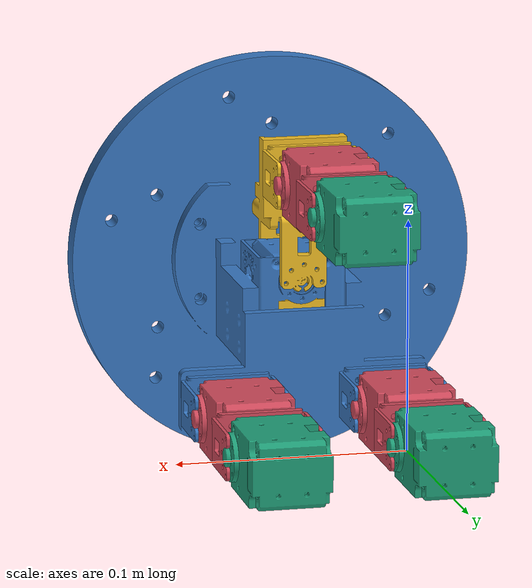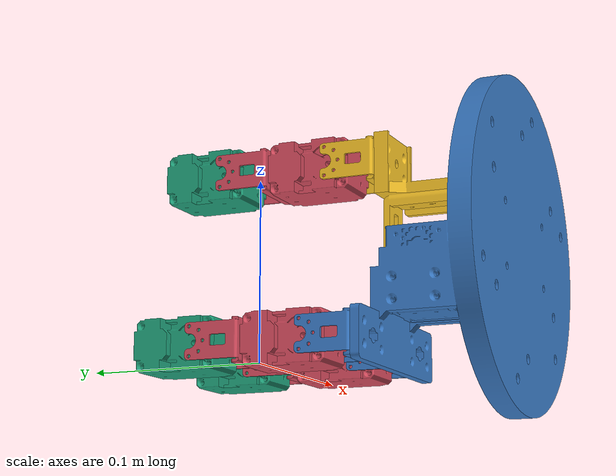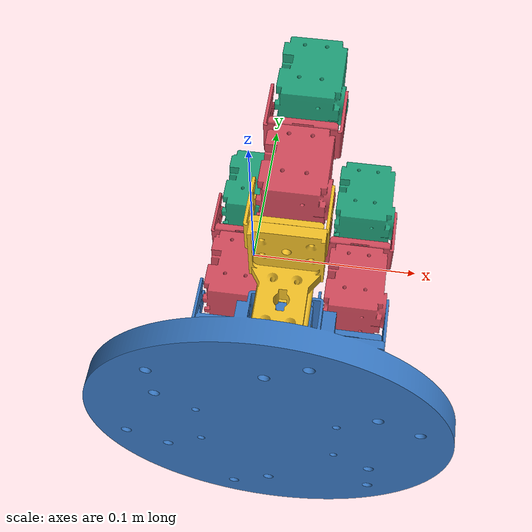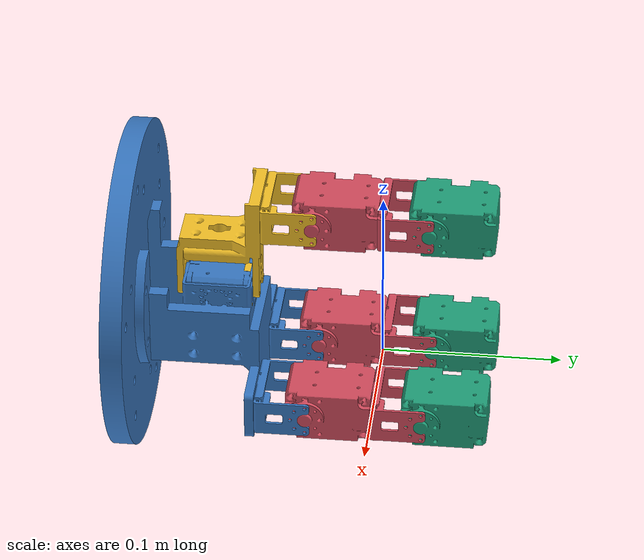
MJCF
<mujoco model="tri_hand">
  <compiler angle="radian" meshdir="meshes" autolimits="true"/>
  <option gravity="0 -9.81 0" integrator="implicitfast" timestep="0.002"/>

  <asset>
    <mesh name="palm_base" file="palm_base.stl" scale="0.001 0.001 0.001"/>
    <mesh name="thumb_mount" file="thumb_mount.stl" scale="0.001 0.001 0.001"/>
    <mesh name="actuator" file="actuator.stl" scale="0.001 0.001 0.001"/>
    <mesh name="hinge_frame" file="hinge_frame.stl" scale="0.001 0.001 0.001"/>
  </asset>

  <default>
    <joint type="hinge" axis="1 0 0" range="-1.5708 1.5708" limited="true" damping="0.15" armature="0.01"/>

    <!-- 시각용: 원본 STL. 충돌 없음, group 1 -->
    <default class="visual">
      <geom type="mesh" density="0" contype="0" conaffinity="0" group="1"/>
    </default>

    <!-- 충돌용: 단순 프리미티브. group 3 (뷰어에서 '3' 키로 토글) -->
    <default class="collision">
      <geom density="0" contype="1" conaffinity="1" group="3"
            friction="1.0 0.005 0.0001" rgba="1 0.5 0 0.3"/>
    </default>

    <!-- XL430-W250-T 대응: kp는 기존값 유지, kv 추가로 오버슈트 억제 -->
    <position kp="12" kv="0.5" forcerange="-1.4 1.4" ctrlrange="-1.5708 1.5708"/>
  </default>

  <worldbody>
    <light pos="0 1 0" dir="0 -1 0"/>

    <!-- ===== Palm (고정 베이스) ===== -->
    <geom name="palm" class="visual" mesh="palm_base" rgba="0.22 0.47 0.76 1"/>
    <!-- 팜 충돌 근사 (단위 m) -->
    <geom name="palm_disc"      class="collision" type="cylinder" size="0.090"
          fromto="0.030 -0.1395 0.058  0.030 -0.1280 0.058"/>
    <geom name="palm_hub"       class="collision" type="box"
          pos="0.0298 -0.0950 0.0450" size="0.0265 0.0310 0.0220"/>
    <geom name="palm_bracket_BC" class="collision" type="box"
          pos="0.0298 -0.0655 0.0220" size="0.0550 0.0030 0.0260"/>

    <!-- ===== Finger A (Swivel + 2-Link Thumb) ===== -->
    <!-- 7번째 액추에이터: 엄지 요/대립 관절 (회전축: Y축, 피벗: 모터 혼 중심) -->
    <body name="A_base" pos="0.02975 -0.07078 0.06011">
      <joint name="A_j0" axis="0 1 0" pos="0 0 0" range="-1.0472 1.0472"/>
      <inertial pos="0 0.025 0.025" mass="0.05" diaginertia="1.5e-05 1.5e-05 1.5e-05"/>
      <geom name="thumb_mount" class="visual" mesh="thumb_mount"
            pos="-0.02975 0.07078 -0.06011" rgba="0.95 0.75 0.15 1"/>
      <geom name="thumb_bracket_col" class="collision" type="box"
            pos="0 0.0057 0.0469" size="0.0185 0.0030 0.0170"/>

      <!-- Hinge Frame 1 (A_base에 고정 결합) -->
      <geom name="A_frame1" class="visual" mesh="hinge_frame"
            pos="-0.00075 0.04818 0.04989" euler="0 0 3.14159" rgba="0.95 0.75 0.15 1"/>

      <body name="A_link1" pos="-0.00075 0.04818 0.04989">
        <joint name="A_j1" pos="0 -0.011475 0"/>
        <inertial pos="0 0.015 0" mass="0.07" diaginertia="2.773e-05 1.486e-05 3.344e-05"/>
        <geom name="A_actuator1" class="visual" mesh="actuator" euler="0 0 3.14159" rgba="0.82 0.29 0.36 1"/>
        <geom class="collision" type="box" pos="0.00134 0.00052 -0.00003" size="0.01895 0.02325 0.01425"/>
        <!-- Hinge Frame 2 (Actuator 1 상단에 고정 결합) -->
        <geom name="A_frame2" class="visual" mesh="hinge_frame" pos="0 0.0633 0" euler="0 0 3.14159" rgba="0.82 0.29 0.36 1"/>

        <body name="A_link2" pos="0 0.0633 0">
          <joint name="A_j2" pos="0 -0.011475 0"/>
          <inertial pos="0 0.015 0" mass="0.07" diaginertia="2.773e-05 1.486e-05 3.344e-05"/>
          <geom name="A_actuator2" class="visual" mesh="actuator" euler="0 0 3.14159" rgba="0.12 0.62 0.47 1"/>
          <geom class="collision" type="box" pos="0.00134 0.00052 -0.00003" size="0.01895 0.02325 0.01425"/>
        </body>
      </body>
    </body>

    <!-- ===== Finger B ===== -->
    <!-- Hinge Frame 1 (Palm 베이스에 고정) -->
    <geom name="B_frame1" class="visual" mesh="hinge_frame"
          pos="-0.0050 -0.0230 0.0100" euler="0 0 3.14159" rgba="0.22 0.47 0.76 1"/>

    <body name="B_link1" pos="-0.0050 -0.0230 0.0100">
      <joint name="B_j1" pos="0 -0.011475 0"/>
      <inertial pos="0 0.015 0" mass="0.07" diaginertia="2.773e-05 1.486e-05 3.344e-05"/>
      <geom name="B_actuator1" class="visual" mesh="actuator" euler="0 0 3.14159" rgba="0.82 0.29 0.36 1"/>
      <geom class="collision" type="box" pos="0.00134 0.00052 -0.00003" size="0.01895 0.02325 0.01425"/>
      <!-- Hinge Frame 2 (Actuator 1 상단에 고정 결합) -->
      <geom name="B_frame2" class="visual" mesh="hinge_frame" pos="0 0.0633 0" euler="0 0 3.14159" rgba="0.82 0.29 0.36 1"/>

      <body name="B_link2" pos="0 0.0633 0">
        <joint name="B_j2" pos="0 -0.011475 0"/>
        <inertial pos="0 0.015 0" mass="0.07" diaginertia="2.773e-05 1.486e-05 3.344e-05"/>
        <geom name="B_actuator2" class="visual" mesh="actuator" euler="0 0 3.14159" rgba="0.12 0.62 0.47 1"/>
        <geom class="collision" type="box" pos="0.00134 0.00052 -0.00003" size="0.01895 0.02325 0.01425"/>
      </body>
    </body>

    <!-- ===== Finger C ===== -->
    <!-- Hinge Frame 1 (Palm 베이스에 고정) -->
    <geom name="C_frame1" class="visual" mesh="hinge_frame"
          pos="0.0650 -0.0230 0.0100" euler="0 0 3.14159" rgba="0.22 0.47 0.76 1"/>

    <body name="C_link1" pos="0.0650 -0.0230 0.0100">
      <joint name="C_j1" pos="0 -0.011475 0"/>
      <inertial pos="0 0.015 0" mass="0.07" diaginertia="2.773e-05 1.486e-05 3.344e-05"/>
      <geom name="C_actuator1" class="visual" mesh="actuator" euler="0 0 3.14159" rgba="0.82 0.29 0.36 1"/>
      <geom class="collision" type="box" pos="0.00134 0.00052 -0.00003" size="0.01895 0.02325 0.01425"/>
      <!-- Hinge Frame 2 (Actuator 1 상단에 고정 결합) -->
      <geom name="C_frame2" class="visual" mesh="hinge_frame" pos="0 0.0633 0" euler="0 0 3.14159" rgba="0.82 0.29 0.36 1"/>

      <body name="C_link2" pos="0 0.0633 0">
        <joint name="C_j2" pos="0 -0.011475 0"/>
        <inertial pos="0 0.015 0" mass="0.07" diaginertia="2.773e-05 1.486e-05 3.344e-05"/>
        <geom name="C_actuator2" class="visual" mesh="actuator" euler="0 0 3.14159" rgba="0.12 0.62 0.47 1"/>
        <geom class="collision" type="box" pos="0.00134 0.00052 -0.00003" size="0.01895 0.02325 0.01425"/>
      </body>
    </body>
  </worldbody>

  <actuator>
    <position name="A_j0_act" joint="A_j0" ctrlrange="-1.0472 1.0472"/>
    <position name="A_j1_act" joint="A_j1"/>
    <position name="A_j2_act" joint="A_j2"/>
    <position name="B_j1_act" joint="B_j1"/>
    <position name="B_j2_act" joint="B_j2"/>
    <position name="C_j1_act" joint="C_j1"/>
    <position name="C_j2_act" joint="C_j2"/>
  </actuator>
</mujoco>
